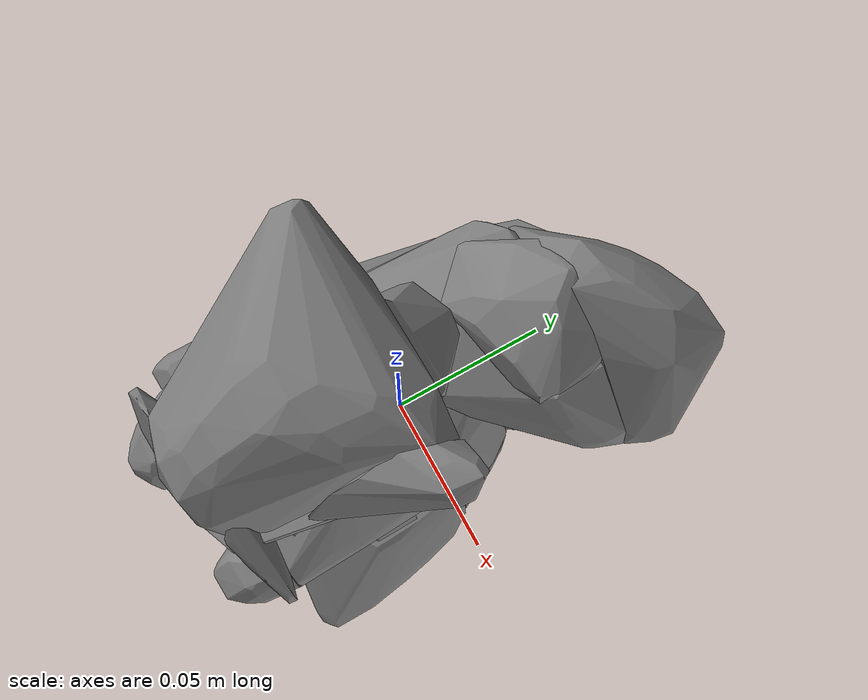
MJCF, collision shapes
<mujoco model="squirrel plushie">
  <asset>
    <texture type="2d" name="texture" file="texture.png" />
    <material name="material_0" texture="texture" specular="0.5" shininess="0.5" />
    <mesh name="model" file="model.obj" />
    <mesh name="model_collision_0" file="model_collision_0.obj" />
    <mesh name="model_collision_1" file="model_collision_1.obj" />
    <mesh name="model_collision_2" file="model_collision_2.obj" />
    <mesh name="model_collision_3" file="model_collision_3.obj" />
    <mesh name="model_collision_4" file="model_collision_4.obj" />
    <mesh name="model_collision_5" file="model_collision_5.obj" />
    <mesh name="model_collision_6" file="model_collision_6.obj" />
    <mesh name="model_collision_7" file="model_collision_7.obj" />
    <mesh name="model_collision_8" file="model_collision_8.obj" />
    <mesh name="model_collision_9" file="model_collision_9.obj" />
    <mesh name="model_collision_10" file="model_collision_10.obj" />
    <mesh name="model_collision_11" file="model_collision_11.obj" />
    <mesh name="model_collision_12" file="model_collision_12.obj" />
    <mesh name="model_collision_13" file="model_collision_13.obj" />
    <mesh name="model_collision_14" file="model_collision_14.obj" />
    <mesh name="model_collision_15" file="model_collision_15.obj" />
    <mesh name="model_collision_16" file="model_collision_16.obj" />
    <mesh name="model_collision_17" file="model_collision_17.obj" />
    <mesh name="model_collision_18" file="model_collision_18.obj" />
    <mesh name="model_collision_19" file="model_collision_19.obj" />
    <mesh name="model_collision_20" file="model_collision_20.obj" />
    <mesh name="model_collision_21" file="model_collision_21.obj" />
    <mesh name="model_collision_22" file="model_collision_22.obj" />
    <mesh name="model_collision_23" file="model_collision_23.obj" />
    <mesh name="model_collision_24" file="model_collision_24.obj" />
    <mesh name="model_collision_25" file="model_collision_25.obj" />
    <mesh name="model_collision_26" file="model_collision_26.obj" />
    <mesh name="model_collision_27" file="model_collision_27.obj" />
    <mesh name="model_collision_28" file="model_collision_28.obj" />
    <mesh name="model_collision_29" file="model_collision_29.obj" />
    <mesh name="model_collision_30" file="model_collision_30.obj" />
    <mesh name="model_collision_31" file="model_collision_31.obj" />
  </asset>
  <worldbody>
    <body name="squirrel plushie">
      <geom material="material_0" mesh="model" type="mesh" contype="0" conaffinity="0" group="2" />
      <geom mesh="model_collision_0" type="mesh" group="3" />
      <geom mesh="model_collision_1" type="mesh" group="3" />
      <geom mesh="model_collision_2" type="mesh" group="3" />
      <geom mesh="model_collision_3" type="mesh" group="3" />
      <geom mesh="model_collision_4" type="mesh" group="3" />
      <geom mesh="model_collision_5" type="mesh" group="3" />
      <geom mesh="model_collision_6" type="mesh" group="3" />
      <geom mesh="model_collision_7" type="mesh" group="3" />
      <geom mesh="model_collision_8" type="mesh" group="3" />
      <geom mesh="model_collision_9" type="mesh" group="3" />
      <geom mesh="model_collision_10" type="mesh" group="3" />
      <geom mesh="model_collision_11" type="mesh" group="3" />
      <geom mesh="model_collision_12" type="mesh" group="3" />
      <geom mesh="model_collision_13" type="mesh" group="3" />
      <geom mesh="model_collision_14" type="mesh" group="3" />
      <geom mesh="model_collision_15" type="mesh" group="3" />
      <geom mesh="model_collision_16" type="mesh" group="3" />
      <geom mesh="model_collision_17" type="mesh" group="3" />
      <geom mesh="model_collision_18" type="mesh" group="3" />
      <geom mesh="model_collision_19" type="mesh" group="3" />
      <geom mesh="model_collision_20" type="mesh" group="3" />
      <geom mesh="model_collision_21" type="mesh" group="3" />
      <geom mesh="model_collision_22" type="mesh" group="3" />
      <geom mesh="model_collision_23" type="mesh" group="3" />
      <geom mesh="model_collision_24" type="mesh" group="3" />
      <geom mesh="model_collision_25" type="mesh" group="3" />
      <geom mesh="model_collision_26" type="mesh" group="3" />
      <geom mesh="model_collision_27" type="mesh" group="3" />
      <geom mesh="model_collision_28" type="mesh" group="3" />
      <geom mesh="model_collision_29" type="mesh" group="3" />
      <geom mesh="model_collision_30" type="mesh" group="3" />
      <geom mesh="model_collision_31" type="mesh" group="3" />
    </body>
  </worldbody>
</mujoco>
